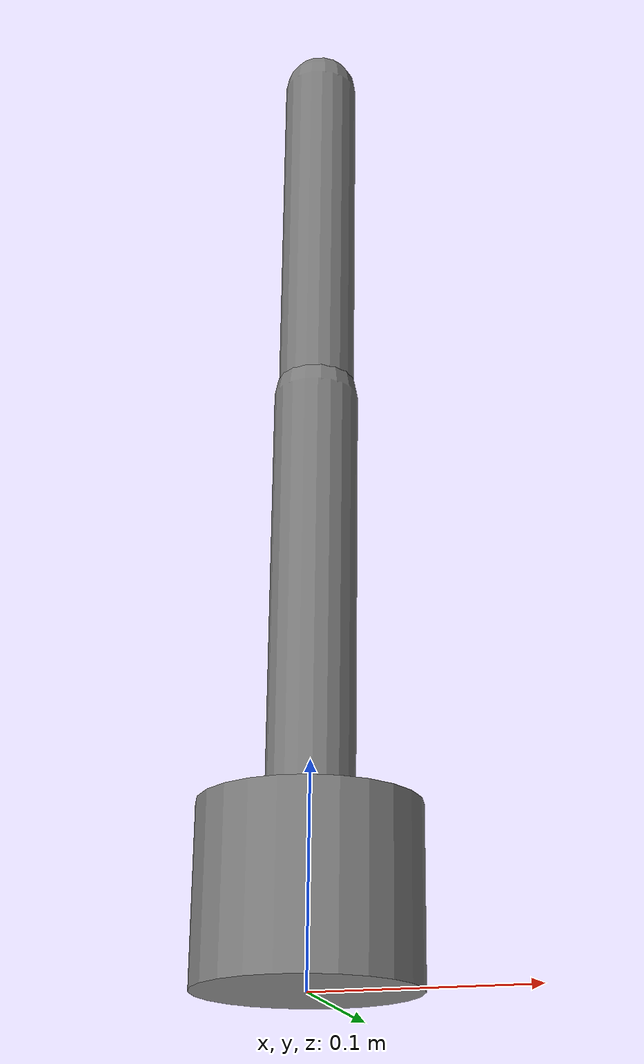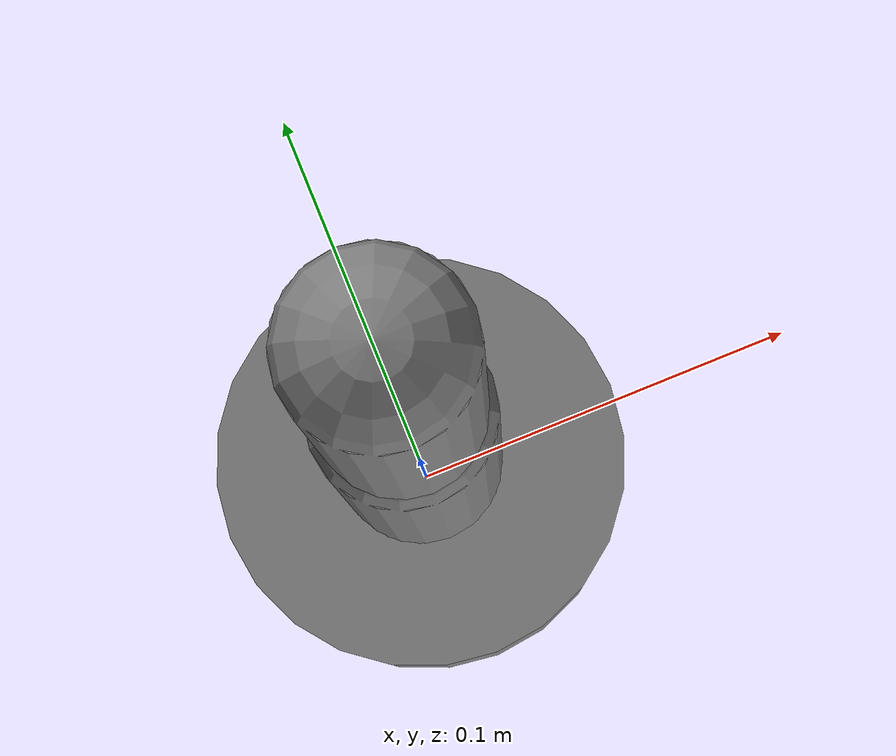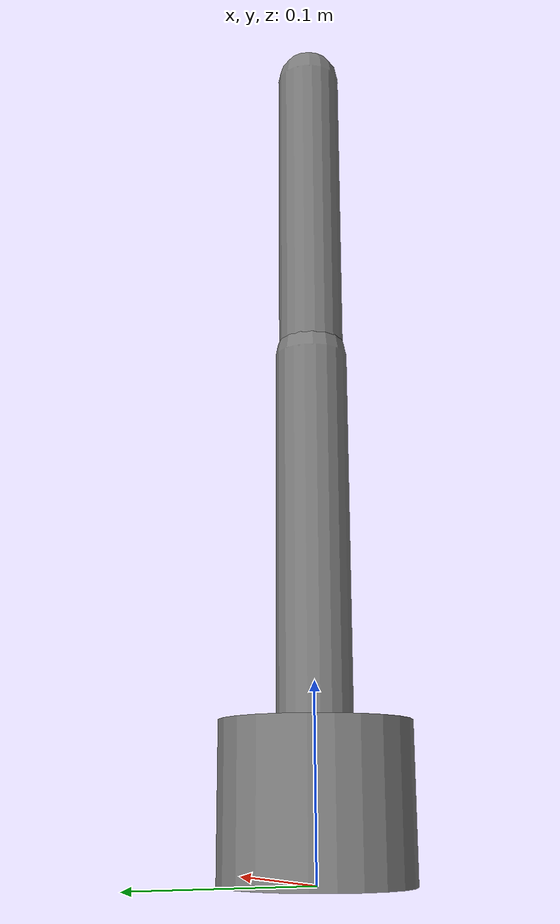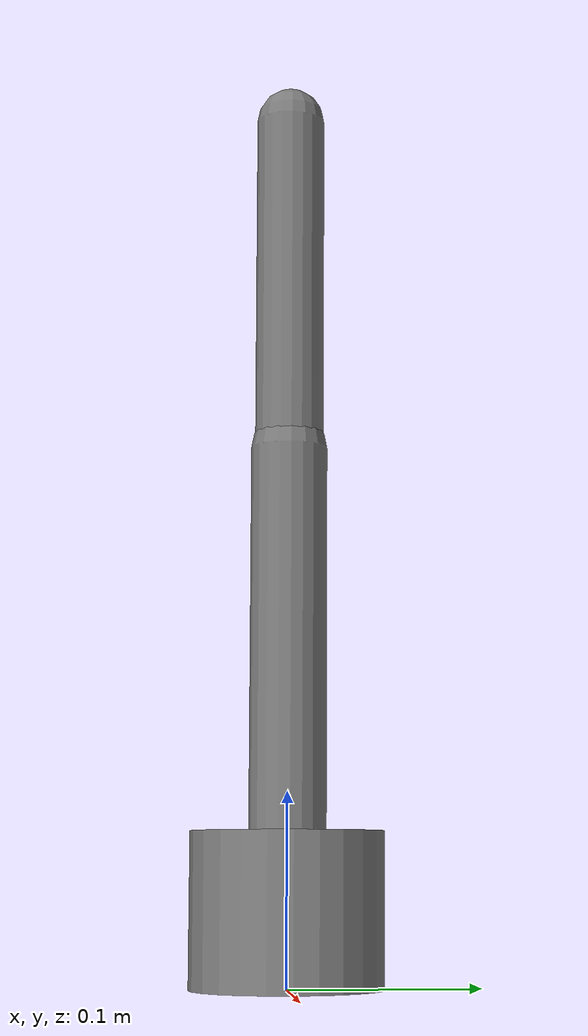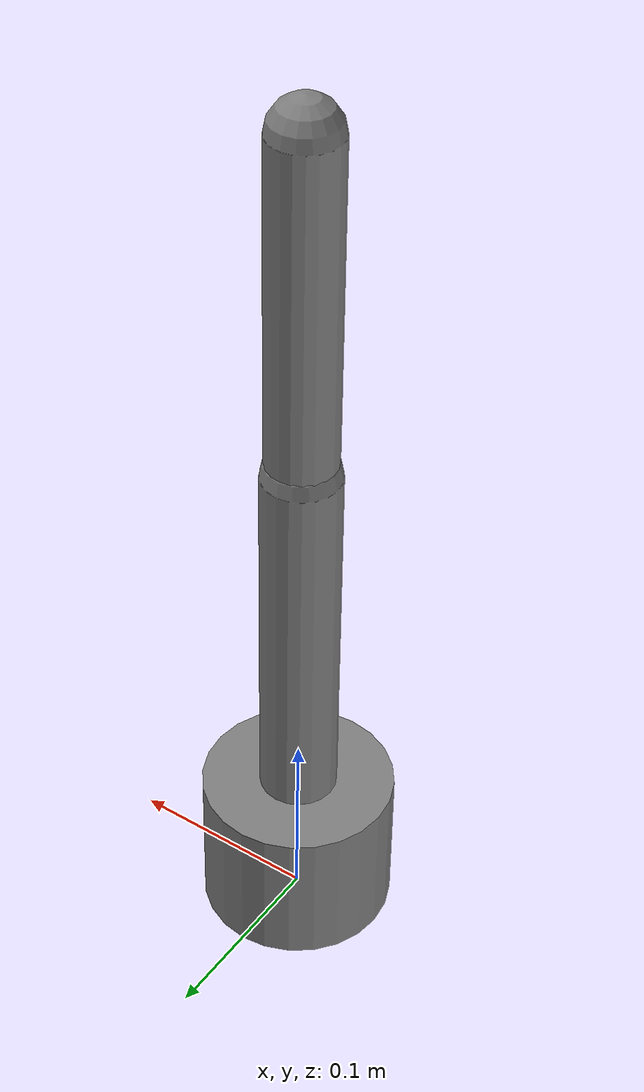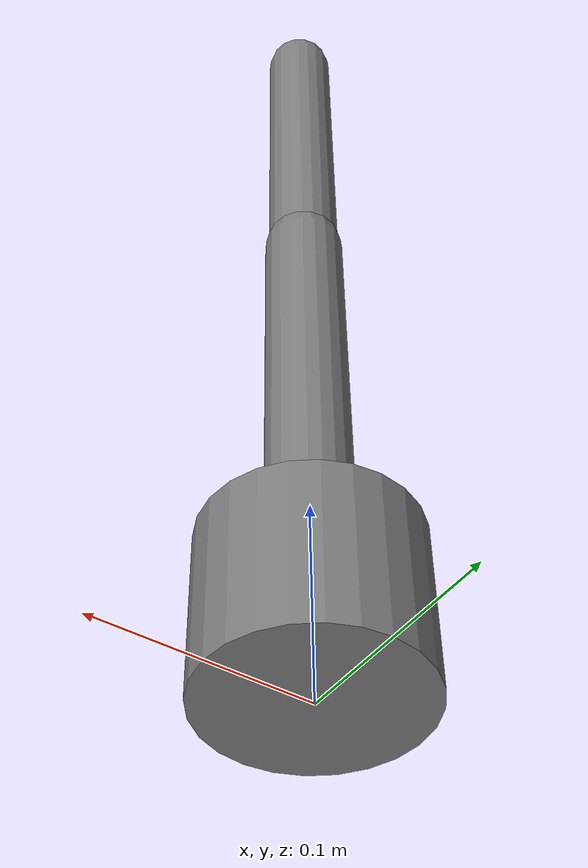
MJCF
<mujoco model="t135-arm">
  <compiler angle="radian"/>
  <worldbody>
    <body name="base" pos="0 0 0">
      <geom name="base-geom" type="cylinder" size="0.05 0.04" pos="0 0 0.04"/>
      <body name="link1" pos="0 0 0.08">
        <joint name="j1" type="hinge" axis="0 0 1" range="-3.14 3.14"/>
        <geom name="link1-geom" type="capsule" fromto="0 0 0 0 0 0.2" size="0.02"/>
        <body name="link2" pos="0 0 0.2">
          <joint name="j2" type="hinge" axis="0 1 0" range="-3.14 3.14"/>
          <geom name="link2-geom" type="capsule" fromto="0 0 0 0 0 0.18" size="0.018"/>
        </body>
      </body>
    </body>
  </worldbody>
  <actuator>
    <motor name="m1" joint="j1" gear="1"/>
    <motor name="m2" joint="j2" gear="1"/>
  </actuator>
</mujoco>
